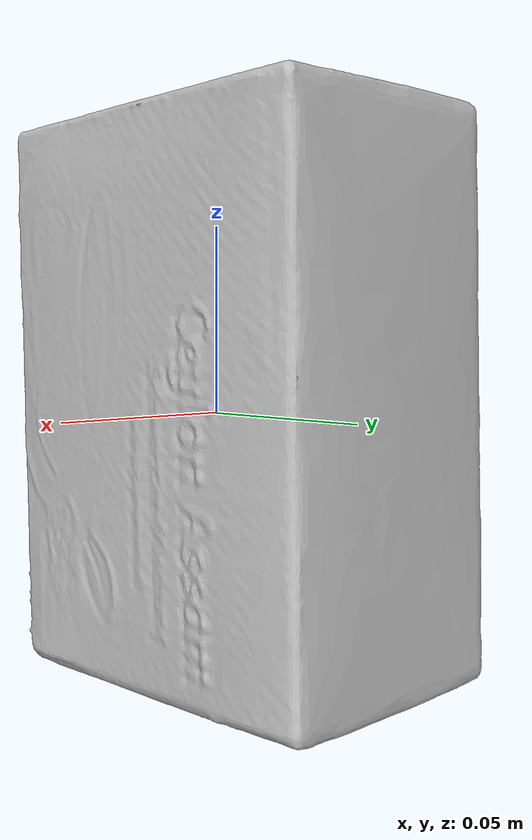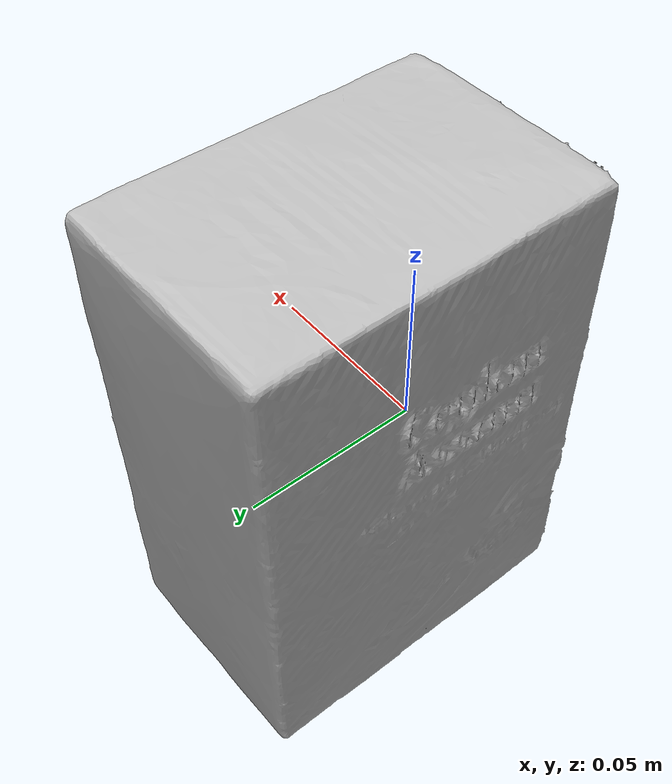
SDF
<?xml version='1.0'?>
<sdf version="1.4">
  <model name="CeylonTea">
    <static>false</static>
    <link name="link">
      <inertial>
        <pose>0.0053124464232864686 0.015855858776257996 0.005298568252051164 3.136384178476542 -0.011212350120072984 -3.130528797304708</pose>
        <mass>0.04933995815864234</mass>
        <inertia>
          <ixx>0.0002489247616350957</ixx>
          <ixy>-7.357399270993131e-22</ixy>
          <ixz>1.668232589809319e-21</ixz>
          <iyy>0.00020499404309139453</iyy>
          <iyz>-6.801803130682644e-20</iyz>
          <izz>0.00012248643135557075</izz>
        </inertia>
      </inertial>
      <collision name="collision">
        <geometry>
          <mesh>
            <!-- Use a downsampled mesh for collisions -->
            <uri>model:///CeylonTea/CeylonTea_250_collision.obj</uri>
	        </mesh>
        </geometry>
        <surface>
      </surface>
      </collision>
      <visual name="visual">
        <geometry>
          <mesh>
            <uri>model:///CeylonTea/CeylonTea_25k_tex.obj</uri>
	        </mesh>
        </geometry>
        <material>
          <script>
            <uri>model:///CeylonTea/CeylonTea.material</uri>
            <name>CeylonTea</name>
          </script>
        </material>
      </visual>
    </link>
  </model>
</sdf>
